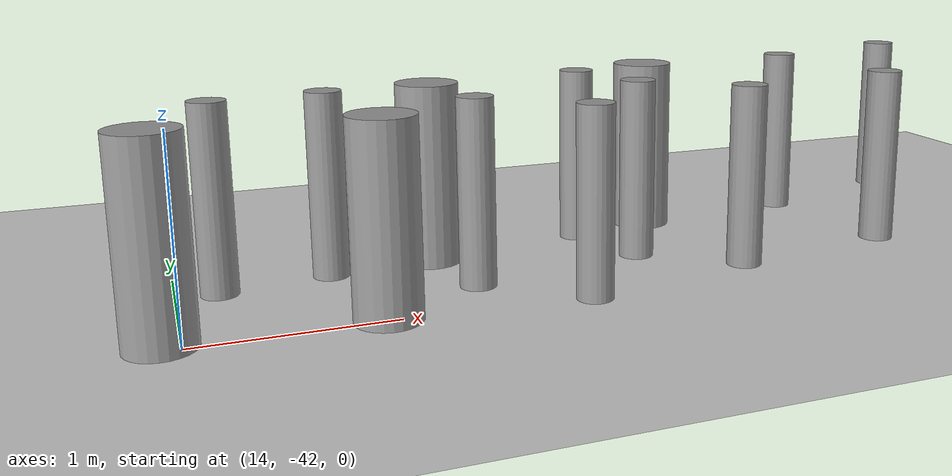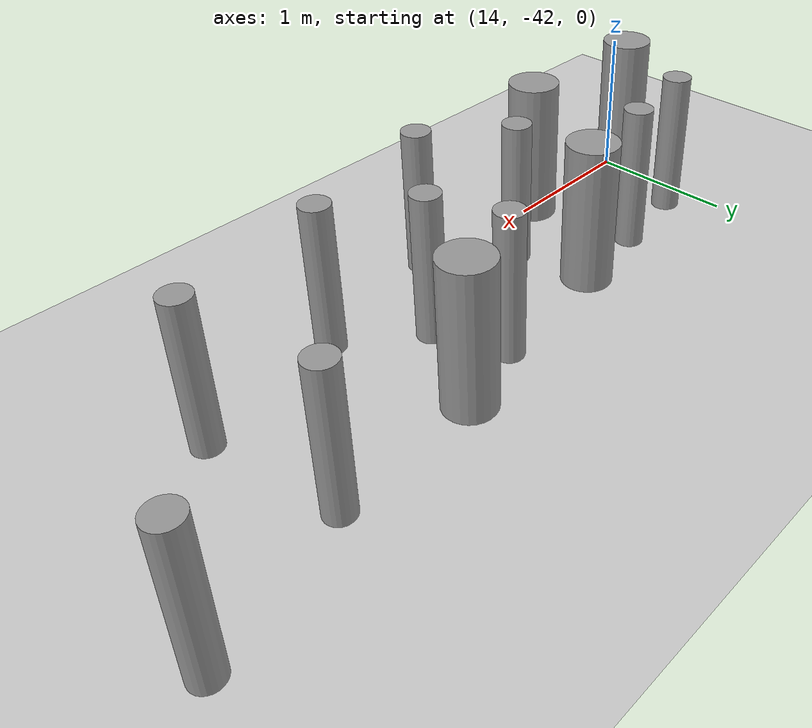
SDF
<sdf version="1.6">
 <world name="default">
  <model name="ground_plane">
   <static>1</static>
   <link name="link">
    <collision name="collision">
     <geometry><plane><normal>0 0 1</normal><size>100 100</size></plane></geometry>
     <surface><friction><ode><mu>100</mu><mu2>50</mu2></ode></friction></surface>
    </collision>
    <visual name="visual">
     <cast_shadows>0</cast_shadows>
     <geometry><plane><normal>0 0 1</normal><size>100 100</size></plane></geometry>
     <material>
      <script><uri>file://media/materials/scripts/gazebo.material</uri><name>Gazebo/Grey</name></script>
     </material>
    </visual>
   </link>
  </model>
  <model name="cyl_wall_clone_clone_1_clone_1_clone_clone_1_clone">
   <link name="link_0">
    <pose>-2.73893 -0.366465 0 0 -0 0</pose>
    <inertial>
     <mass>0.0374993</mass>
     <inertia>
      <ixx>0.00321281</ixx>
      <ixy>0</ixy>
      <ixz>0</ixz>
      <iyy>0.00321281</iyy>
      <iyz>0</iyz>
      <izz>0.000175774</izz>
     </inertia>
    </inertial>
    <visual name="visual">
     <geometry><cylinder><radius>0.0968661</radius><length>1</length></cylinder></geometry>
     <material>
      <lighting>1</lighting>
      <script><uri>file://media/materials/scripts/gazebo.material</uri><name>Gazebo/Grey</name></script>
      <ambient>0.3 0.3 0.3 1</ambient>
      <diffuse>0.7 0.7 0.7 1</diffuse>
      <specular>0.01 0.01 0.01 1</specular>
      <emissive>0 0 0 1</emissive>
     </material>
    </visual>
    <collision name="collision">
     <geometry><cylinder><radius>0.096866</radius><length>1</length></cylinder></geometry>
     <surface>
      <friction>
       <ode><mu>1</mu><mu2>1</mu2><fdir1>0 0 0</fdir1><slip1>0</slip1><slip2>0</slip2></ode>
       <torsional>
        <coefficient>1</coefficient>
        <patch_radius>0</patch_radius>
        <surface_radius>0</surface_radius>
        <use_patch_radius>1</use_patch_radius>
        <ode><slip>0</slip></ode>
       </torsional>
      </friction>
      <bounce><restitution_coefficient>0</restitution_coefficient><threshold>1e+06</threshold></bounce>
      <contact>
       <collide_without_contact>0</collide_without_contact>
       <collide_without_contact_bitmask>1</collide_without_contact_bitmask>
       <collide_bitmask>1</collide_bitmask>
       <ode>
        <soft_cfm>0</soft_cfm>
        <soft_erp>0.2</soft_erp>
        <kp>1e+13</kp>
        <kd>1</kd>
        <max_vel>0.01</max_vel>
        <min_depth>0</min_depth>
       </ode>
       <bullet>
        <split_impulse>1</split_impulse>
        <split_impulse_penetration_threshold>-0.01</split_impulse_penetration_threshold>
        <soft_cfm>0</soft_cfm>
        <soft_erp>0.2</soft_erp>
        <kp>1e+13</kp>
        <kd>1</kd>
       </bullet>
      </contact>
     </surface>
    </collision>
   </link>
   <link name="link_0_clone">
    <pose>-1.73893 0.61877 0 0 -0 0</pose>
    <inertial>
     <mass>0.0374993</mass>
     <inertia>
      <ixx>0.00321281</ixx>
      <ixy>0</ixy>
      <ixz>0</ixz>
      <iyy>0.00321281</iyy>
      <iyz>0</iyz>
      <izz>0.000175774</izz>
     </inertia>
    </inertial>
    <visual name="visual">
     <geometry><cylinder><radius>0.0968661</radius><length>1</length></cylinder></geometry>
     <material>
      <lighting>1</lighting>
      <script><uri>file://media/materials/scripts/gazebo.material</uri><name>Gazebo/Grey</name></script>
      <ambient>0.3 0.3 0.3 1</ambient>
      <diffuse>0.7 0.7 0.7 1</diffuse>
      <specular>0.01 0.01 0.01 1</specular>
      <emissive>0 0 0 1</emissive>
      <shader type="pixel"/>
     </material>
    </visual>
    <collision name="collision">
     <geometry><cylinder><radius>0.096866</radius><length>1</length></cylinder></geometry>
     <surface>
      <friction>
       <ode><mu>1</mu><mu2>1</mu2><fdir1>0 0 0</fdir1><slip1>0</slip1><slip2>0</slip2></ode>
       <torsional>
        <coefficient>1</coefficient>
        <patch_radius>0</patch_radius>
        <surface_radius>0</surface_radius>
        <use_patch_radius>1</use_patch_radius>
        <ode><slip>0</slip></ode>
       </torsional>
      </friction>
      <bounce><restitution_coefficient>0</restitution_coefficient><threshold>1e+06</threshold></bounce>
      <contact>
       <collide_without_contact>0</collide_without_contact>
       <collide_without_contact_bitmask>1</collide_without_contact_bitmask>
       <collide_bitmask>1</collide_bitmask>
       <ode>
        <soft_cfm>0</soft_cfm>
        <soft_erp>0.2</soft_erp>
        <kp>1e+13</kp>
        <kd>1</kd>
        <max_vel>0.01</max_vel>
        <min_depth>0</min_depth>
       </ode>
       <bullet>
        <split_impulse>1</split_impulse>
        <split_impulse_penetration_threshold>-0.01</split_impulse_penetration_threshold>
        <soft_cfm>0</soft_cfm>
        <soft_erp>0.2</soft_erp>
        <kp>1e+13</kp>
        <kd>1</kd>
       </bullet>
      </contact>
     </surface>
    </collision>
   </link>
   <link name="link_0_clone_clone">
    <pose>-0.327073 0.143919 0 0 -0 0</pose>
    <inertial>
     <mass>0.0374993</mass>
     <inertia>
      <ixx>0.00321281</ixx>
      <ixy>0</ixy>
      <ixz>0</ixz>
      <iyy>0.00321281</iyy>
      <iyz>0</iyz>
      <izz>0.000175774</izz>
     </inertia>
    </inertial>
    <visual name="visual">
     <geometry><cylinder><radius>0.0968661</radius><length>1</length></cylinder></geometry>
     <material>
      <lighting>1</lighting>
      <script><uri>file://media/materials/scripts/gazebo.material</uri><name>Gazebo/Grey</name></script>
      <ambient>0.3 0.3 0.3 1</ambient>
      <diffuse>0.7 0.7 0.7 1</diffuse>
      <specular>0.01 0.01 0.01 1</specular>
      <emissive>0 0 0 1</emissive>
      <shader type="pixel"/>
     </material>
    </visual>
    <collision name="collision">
     <geometry><cylinder><radius>0.096866</radius><length>1</length></cylinder></geometry>
     <surface>
      <friction>
       <ode><mu>1</mu><mu2>1</mu2><fdir1>0 0 0</fdir1><slip1>0</slip1><slip2>0</slip2></ode>
       <torsional>
        <coefficient>1</coefficient>
        <patch_radius>0</patch_radius>
        <surface_radius>0</surface_radius>
        <use_patch_radius>1</use_patch_radius>
        <ode><slip>0</slip></ode>
       </torsional>
      </friction>
      <bounce><restitution_coefficient>0</restitution_coefficient><threshold>1e+06</threshold></bounce>
      <contact>
       <collide_without_contact>0</collide_without_contact>
       <collide_without_contact_bitmask>1</collide_without_contact_bitmask>
       <collide_bitmask>1</collide_bitmask>
       <ode>
        <soft_cfm>0</soft_cfm>
        <soft_erp>0.2</soft_erp>
        <kp>1e+13</kp>
        <kd>1</kd>
        <max_vel>0.01</max_vel>
        <min_depth>0</min_depth>
       </ode>
       <bullet>
        <split_impulse>1</split_impulse>
        <split_impulse_penetration_threshold>-0.01</split_impulse_penetration_threshold>
        <soft_cfm>0</soft_cfm>
        <soft_erp>0.2</soft_erp>
        <kp>1e+13</kp>
        <kd>1</kd>
       </bullet>
      </contact>
     </surface>
    </collision>
   </link>
   <link name="link_0_clone_clone_0">
    <pose>1.26107 -0.419359 0 0 -0 0</pose>
    <inertial>
     <mass>0.0374993</mass>
     <inertia>
      <ixx>0.00321281</ixx>
      <ixy>0</ixy>
      <ixz>0</ixz>
      <iyy>0.00321281</iyy>
      <iyz>0</iyz>
      <izz>0.000175774</izz>
     </inertia>
    </inertial>
    <visual name="visual">
     <geometry><cylinder><radius>0.0968661</radius><length>1</length></cylinder></geometry>
     <material>
      <lighting>1</lighting>
      <script><uri>file://media/materials/scripts/gazebo.material</uri><name>Gazebo/Grey</name></script>
      <ambient>0.3 0.3 0.3 1</ambient>
      <diffuse>0.7 0.7 0.7 1</diffuse>
      <specular>0.01 0.01 0.01 1</specular>
      <emissive>0 0 0 1</emissive>
      <shader type="pixel"/>
     </material>
    </visual>
    <collision name="collision">
     <geometry><cylinder><radius>0.096866</radius><length>1</length></cylinder></geometry>
     <surface>
      <friction>
       <ode><mu>1</mu><mu2>1</mu2><fdir1>0 0 0</fdir1><slip1>0</slip1><slip2>0</slip2></ode>
       <torsional>
        <coefficient>1</coefficient>
        <patch_radius>0</patch_radius>
        <surface_radius>0</surface_radius>
        <use_patch_radius>1</use_patch_radius>
        <ode><slip>0</slip></ode>
       </torsional>
      </friction>
      <bounce><restitution_coefficient>0</restitution_coefficient><threshold>1e+06</threshold></bounce>
      <contact>
       <collide_without_contact>0</collide_without_contact>
       <collide_without_contact_bitmask>1</collide_without_contact_bitmask>
       <collide_bitmask>1</collide_bitmask>
       <ode>
        <soft_cfm>0</soft_cfm>
        <soft_erp>0.2</soft_erp>
        <kp>1e+13</kp>
        <kd>1</kd>
        <max_vel>0.01</max_vel>
        <min_depth>0</min_depth>
       </ode>
       <bullet>
        <split_impulse>1</split_impulse>
        <split_impulse_penetration_threshold>-0.01</split_impulse_penetration_threshold>
        <soft_cfm>0</soft_cfm>
        <soft_erp>0.2</soft_erp>
        <kp>1e+13</kp>
        <kd>1</kd>
       </bullet>
      </contact>
     </surface>
    </collision>
   </link>
   <link name="link_0_clone_clone_1">
    <pose>-1.73893 -0.277168 0 0 -0 0</pose>
    <inertial>
     <mass>0.0374993</mass>
     <inertia>
      <ixx>0.00321281</ixx>
      <ixy>0</ixy>
      <ixz>0</ixz>
      <iyy>0.00321281</iyy>
      <iyz>0</iyz>
      <izz>0.000175774</izz>
     </inertia>
    </inertial>
    <visual name="visual">
     <geometry><cylinder><radius>0.0968661</radius><length>1</length></cylinder></geometry>
     <material>
      <lighting>1</lighting>
      <script><uri>file://media/materials/scripts/gazebo.material</uri><name>Gazebo/Grey</name></script>
      <ambient>0.3 0.3 0.3 1</ambient>
      <diffuse>0.7 0.7 0.7 1</diffuse>
      <specular>0.01 0.01 0.01 1</specular>
      <emissive>0 0 0 1</emissive>
      <shader type="pixel"/>
     </material>
    </visual>
    <collision name="collision">
     <geometry><cylinder><radius>0.096866</radius><length>1</length></cylinder></geometry>
     <surface>
      <friction>
       <ode><mu>1</mu><mu2>1</mu2><fdir1>0 0 0</fdir1><slip1>0</slip1><slip2>0</slip2></ode>
       <torsional>
        <coefficient>1</coefficient>
        <patch_radius>0</patch_radius>
        <surface_radius>0</surface_radius>
        <use_patch_radius>1</use_patch_radius>
        <ode><slip>0</slip></ode>
       </torsional>
      </friction>
      <bounce><restitution_coefficient>0</restitution_coefficient><threshold>1e+06</threshold></bounce>
      <contact>
       <collide_without_contact>0</collide_without_contact>
       <collide_without_contact_bitmask>1</collide_without_contact_bitmask>
       <collide_bitmask>1</collide_bitmask>
       <ode>
        <soft_cfm>0</soft_cfm>
        <soft_erp>0.2</soft_erp>
        <kp>1e+13</kp>
        <kd>1</kd>
        <max_vel>0.01</max_vel>
        <min_depth>0</min_depth>
       </ode>
       <bullet>
        <split_impulse>1</split_impulse>
        <split_impulse_penetration_threshold>-0.01</split_impulse_penetration_threshold>
        <soft_cfm>0</soft_cfm>
        <soft_erp>0.2</soft_erp>
        <kp>1e+13</kp>
        <kd>1</kd>
       </bullet>
      </contact>
     </surface>
    </collision>
   </link>
   <link name="link_0_clone_clone_2">
    <pose>-0.738934 0.593961 0 0 -0 0</pose>
    <inertial>
     <mass>0.0374993</mass>
     <inertia>
      <ixx>0.00321281</ixx>
      <ixy>0</ixy>
      <ixz>0</ixz>
      <iyy>0.00321281</iyy>
      <iyz>0</iyz>
      <izz>0.000175774</izz>
     </inertia>
    </inertial>
    <visual name="visual">
     <geometry><cylinder><radius>0.0968661</radius><length>1</length></cylinder></geometry>
     <material>
      <lighting>1</lighting>
      <script><uri>file://media/materials/scripts/gazebo.material</uri><name>Gazebo/Grey</name></script>
      <ambient>0.3 0.3 0.3 1</ambient>
      <diffuse>0.7 0.7 0.7 1</diffuse>
      <specular>0.01 0.01 0.01 1</specular>
      <emissive>0 0 0 1</emissive>
      <shader type="pixel"/>
     </material>
    </visual>
    <collision name="collision">
     <geometry><cylinder><radius>0.096866</radius><length>1</length></cylinder></geometry>
     <surface>
      <friction>
       <ode><mu>1</mu><mu2>1</mu2><fdir1>0 0 0</fdir1><slip1>0</slip1><slip2>0</slip2></ode>
       <torsional>
        <coefficient>1</coefficient>
        <patch_radius>0</patch_radius>
        <surface_radius>0</surface_radius>
        <use_patch_radius>1</use_patch_radius>
        <ode><slip>0</slip></ode>
       </torsional>
      </friction>
      <bounce><restitution_coefficient>0</restitution_coefficient><threshold>1e+06</threshold></bounce>
      <contact>
       <collide_without_contact>0</collide_without_contact>
       <collide_without_contact_bitmask>1</collide_without_contact_bitmask>
       <collide_bitmask>1</collide_bitmask>
       <ode>
        <soft_cfm>0</soft_cfm>
        <soft_erp>0.2</soft_erp>
        <kp>1e+13</kp>
        <kd>1</kd>
        <max_vel>0.01</max_vel>
        <min_depth>0</min_depth>
       </ode>
       <bullet>
        <split_impulse>1</split_impulse>
        <split_impulse_penetration_threshold>-0.01</split_impulse_penetration_threshold>
        <soft_cfm>0</soft_cfm>
        <soft_erp>0.2</soft_erp>
        <kp>1e+13</kp>
        <kd>1</kd>
       </bullet>
      </contact>
     </surface>
    </collision>
   </link>
   <link name="link_0_clone_clone_3">
    <pose>0.261066 0.624849 0 0 -0 0</pose>
    <inertial>
     <mass>0.0374993</mass>
     <inertia>
      <ixx>0.00321281</ixx>
      <ixy>0</ixy>
      <ixz>0</ixz>
      <iyy>0.00321281</iyy>
      <iyz>0</iyz>
      <izz>0.000175774</izz>
     </inertia>
    </inertial>
    <visual name="visual">
     <geometry><cylinder><radius>0.0968661</radius><length>1</length></cylinder></geometry>
     <material>
      <lighting>1</lighting>
      <script><uri>file://media/materials/scripts/gazebo.material</uri><name>Gazebo/Grey</name></script>
      <ambient>0.3 0.3 0.3 1</ambient>
      <diffuse>0.7 0.7 0.7 1</diffuse>
      <specular>0.01 0.01 0.01 1</specular>
      <emissive>0 0 0 1</emissive>
      <shader type="pixel"/>
     </material>
    </visual>
    <collision name="collision">
     <geometry><cylinder><radius>0.096866</radius><length>1</length></cylinder></geometry>
     <surface>
      <friction>
       <ode><mu>1</mu><mu2>1</mu2><fdir1>0 0 0</fdir1><slip1>0</slip1><slip2>0</slip2></ode>
       <torsional>
        <coefficient>1</coefficient>
        <patch_radius>0</patch_radius>
        <surface_radius>0</surface_radius>
        <use_patch_radius>1</use_patch_radius>
        <ode><slip>0</slip></ode>
       </torsional>
      </friction>
      <bounce><restitution_coefficient>0</restitution_coefficient><threshold>1e+06</threshold></bounce>
      <contact>
       <collide_without_contact>0</collide_without_contact>
       <collide_without_contact_bitmask>1</collide_without_contact_bitmask>
       <collide_bitmask>1</collide_bitmask>
       <ode>
        <soft_cfm>0</soft_cfm>
        <soft_erp>0.2</soft_erp>
        <kp>1e+13</kp>
        <kd>1</kd>
        <max_vel>0.01</max_vel>
        <min_depth>0</min_depth>
       </ode>
       <bullet>
        <split_impulse>1</split_impulse>
        <split_impulse_penetration_threshold>-0.01</split_impulse_penetration_threshold>
        <soft_cfm>0</soft_cfm>
        <soft_erp>0.2</soft_erp>
        <kp>1e+13</kp>
        <kd>1</kd>
       </bullet>
      </contact>
     </surface>
    </collision>
   </link>
   <link name="link_0_clone_clone_4">
    <pose>-0.239049 -0.353105 0 0 -0 0</pose>
    <inertial>
     <mass>0.0374993</mass>
     <inertia>
      <ixx>0.00321281</ixx>
      <ixy>0</ixy>
      <ixz>0</ixz>
      <iyy>0.00321281</iyy>
      <iyz>0</iyz>
      <izz>0.000175774</izz>
     </inertia>
    </inertial>
    <visual name="visual">
     <geometry><cylinder><radius>0.0968661</radius><length>1</length></cylinder></geometry>
     <material>
      <lighting>1</lighting>
      <script><uri>file://media/materials/scripts/gazebo.material</uri><name>Gazebo/Grey</name></script>
      <ambient>0.3 0.3 0.3 1</ambient>
      <diffuse>0.7 0.7 0.7 1</diffuse>
      <specular>0.01 0.01 0.01 1</specular>
      <emissive>0 0 0 1</emissive>
      <shader type="pixel"/>
     </material>
    </visual>
    <collision name="collision">
     <geometry><cylinder><radius>0.096866</radius><length>1</length></cylinder></geometry>
     <surface>
      <friction>
       <ode><mu>1</mu><mu2>1</mu2><fdir1>0 0 0</fdir1><slip1>0</slip1><slip2>0</slip2></ode>
       <torsional>
        <coefficient>1</coefficient>
        <patch_radius>0</patch_radius>
        <surface_radius>0</surface_radius>
        <use_patch_radius>1</use_patch_radius>
        <ode><slip>0</slip></ode>
       </torsional>
      </friction>
      <bounce><restitution_coefficient>0</restitution_coefficient><threshold>1e+06</threshold></bounce>
      <contact>
       <collide_without_contact>0</collide_without_contact>
       <collide_without_contact_bitmask>1</collide_without_contact_bitmask>
       <collide_bitmask>1</collide_bitmask>
       <ode>
        <soft_cfm>0</soft_cfm>
        <soft_erp>0.2</soft_erp>
        <kp>1e+13</kp>
        <kd>1</kd>
        <max_vel>0.01</max_vel>
        <min_depth>0</min_depth>
       </ode>
       <bullet>
        <split_impulse>1</split_impulse>
        <split_impulse_penetration_threshold>-0.01</split_impulse_penetration_threshold>
        <soft_cfm>0</soft_cfm>
        <soft_erp>0.2</soft_erp>
        <kp>1e+13</kp>
        <kd>1</kd>
       </bullet>
      </contact>
     </surface>
    </collision>
   </link>
   <link name="link_0_clone_clone_5">
    <pose>0.672792 0.143919 0 0 -0 0</pose>
    <inertial>
     <mass>0.0374993</mass>
     <inertia>
      <ixx>0.00321281</ixx>
      <ixy>0</ixy>
      <ixz>0</ixz>
      <iyy>0.00321281</iyy>
      <iyz>0</iyz>
      <izz>0.000175774</izz>
     </inertia>
    </inertial>
    <visual name="visual">
     <geometry><cylinder><radius>0.0968661</radius><length>1</length></cylinder></geometry>
     <material>
      <lighting>1</lighting>
      <script><uri>file://media/materials/scripts/gazebo.material</uri><name>Gazebo/Grey</name></script>
      <ambient>0.3 0.3 0.3 1</ambient>
      <diffuse>0.7 0.7 0.7 1</diffuse>
      <specular>0.01 0.01 0.01 1</specular>
      <emissive>0 0 0 1</emissive>
      <shader type="pixel"/>
     </material>
    </visual>
    <collision name="collision">
     <geometry><cylinder><radius>0.096866</radius><length>1</length></cylinder></geometry>
     <surface>
      <friction>
       <ode><mu>1</mu><mu2>1</mu2><fdir1>0 0 0</fdir1><slip1>0</slip1><slip2>0</slip2></ode>
       <torsional>
        <coefficient>1</coefficient>
        <patch_radius>0</patch_radius>
        <surface_radius>0</surface_radius>
        <use_patch_radius>1</use_patch_radius>
        <ode><slip>0</slip></ode>
       </torsional>
      </friction>
      <bounce><restitution_coefficient>0</restitution_coefficient><threshold>1e+06</threshold></bounce>
      <contact>
       <collide_without_contact>0</collide_without_contact>
       <collide_without_contact_bitmask>1</collide_without_contact_bitmask>
       <collide_bitmask>1</collide_bitmask>
       <ode>
        <soft_cfm>0</soft_cfm>
        <soft_erp>0.2</soft_erp>
        <kp>1e+13</kp>
        <kd>1</kd>
        <max_vel>0.01</max_vel>
        <min_depth>0</min_depth>
       </ode>
       <bullet>
        <split_impulse>1</split_impulse>
        <split_impulse_penetration_threshold>-0.01</split_impulse_penetration_threshold>
        <soft_cfm>0</soft_cfm>
        <soft_erp>0.2</soft_erp>
        <kp>1e+13</kp>
        <kd>1</kd>
       </bullet>
      </contact>
     </surface>
    </collision>
   </link>
   <link name="link_0_clone_clone_6">
    <pose>1.84596 -0.433423 0 0 -0 0</pose>
    <inertial>
     <mass>0.0374993</mass>
     <inertia>
      <ixx>0.00321281</ixx>
      <ixy>0</ixy>
      <ixz>0</ixz>
      <iyy>0.00321281</iyy>
      <iyz>0</iyz>
      <izz>0.000175774</izz>
     </inertia>
    </inertial>
    <visual name="visual">
     <geometry><cylinder><radius>0.0968661</radius><length>1</length></cylinder></geometry>
     <material>
      <lighting>1</lighting>
      <script><uri>file://media/materials/scripts/gazebo.material</uri><name>Gazebo/Grey</name></script>
      <ambient>0.3 0.3 0.3 1</ambient>
      <diffuse>0.7 0.7 0.7 1</diffuse>
      <specular>0.01 0.01 0.01 1</specular>
      <emissive>0 0 0 1</emissive>
      <shader type="pixel"/>
     </material>
    </visual>
    <collision name="collision">
     <geometry><cylinder><radius>0.096866</radius><length>1</length></cylinder></geometry>
     <surface>
      <friction>
       <ode><mu>1</mu><mu2>1</mu2><fdir1>0 0 0</fdir1><slip1>0</slip1><slip2>0</slip2></ode>
       <torsional>
        <coefficient>1</coefficient>
        <patch_radius>0</patch_radius>
        <surface_radius>0</surface_radius>
        <use_patch_radius>1</use_patch_radius>
        <ode><slip>0</slip></ode>
       </torsional>
      </friction>
      <bounce><restitution_coefficient>0</restitution_coefficient><threshold>1e+06</threshold></bounce>
      <contact>
       <collide_without_contact>0</collide_without_contact>
       <collide_without_contact_bitmask>1</collide_without_contact_bitmask>
       <collide_bitmask>1</collide_bitmask>
       <ode>
        <soft_cfm>0</soft_cfm>
        <soft_erp>0.2</soft_erp>
        <kp>1e+13</kp>
        <kd>1</kd>
        <max_vel>0.01</max_vel>
        <min_depth>0</min_depth>
       </ode>
       <bullet>
        <split_impulse>1</split_impulse>
        <split_impulse_penetration_threshold>-0.01</split_impulse_penetration_threshold>
        <soft_cfm>0</soft_cfm>
        <soft_erp>0.2</soft_erp>
        <kp>1e+13</kp>
        <kd>1</kd>
       </bullet>
      </contact>
     </surface>
    </collision>
   </link>
   <link name="link_1">
    <pose>-0.738934 -0.397931 0 0 -0 0</pose>
    <inertial>
     <mass>0.117398</mass>
     <inertia>
      <ixx>0.0106445</ixx>
      <ixy>0</ixy>
      <ixz>0</ixz>
      <iyy>0.0106445</iyy>
      <iyz>0</iyz>
      <izz>0.00172278</izz>
     </inertia>
    </inertial>
    <visual name="visual">
     <geometry><cylinder><radius>0.171317</radius><length>1</length></cylinder></geometry>
     <material>
      <lighting>1</lighting>
      <script><uri>file://media/materials/scripts/gazebo.material</uri><name>Gazebo/Grey</name></script>
      <ambient>0.3 0.3 0.3 1</ambient>
      <diffuse>0.7 0.7 0.7 1</diffuse>
      <specular>0.01 0.01 0.01 1</specular>
      <emissive>0 0 0 1</emissive>
     </material>
    </visual>
    <collision name="collision">
     <geometry><cylinder><radius>0.171317</radius><length>1</length></cylinder></geometry>
     <surface>
      <friction>
       <ode><mu>1</mu><mu2>1</mu2><fdir1>0 0 0</fdir1><slip1>0</slip1><slip2>0</slip2></ode>
       <torsional>
        <coefficient>1</coefficient>
        <patch_radius>0</patch_radius>
        <surface_radius>0</surface_radius>
        <use_patch_radius>1</use_patch_radius>
        <ode><slip>0</slip></ode>
       </torsional>
      </friction>
      <bounce><restitution_coefficient>0</restitution_coefficient><threshold>1e+06</threshold></bounce>
      <contact>
       <collide_without_contact>0</collide_without_contact>
       <collide_without_contact_bitmask>1</collide_without_contact_bitmask>
       <collide_bitmask>1</collide_bitmask>
       <ode>
        <soft_cfm>0</soft_cfm>
        <soft_erp>0.2</soft_erp>
        <kp>1e+13</kp>
        <kd>1</kd>
        <max_vel>0.01</max_vel>
        <min_depth>0</min_depth>
       </ode>
       <bullet>
        <split_impulse>1</split_impulse>
        <split_impulse_penetration_threshold>-0.01</split_impulse_penetration_threshold>
        <soft_cfm>0</soft_cfm>
        <soft_erp>0.2</soft_erp>
        <kp>1e+13</kp>
        <kd>1</kd>
       </bullet>
      </contact>
     </surface>
    </collision>
   </link>
   <link name="link_1_clone">
    <pose>0.697784 -0.380861 0 0 -0 0</pose>
    <inertial>
     <mass>0.117398</mass>
     <inertia>
      <ixx>0.0106445</ixx>
      <ixy>0</ixy>
      <ixz>0</ixz>
      <iyy>0.0106445</iyy>
      <iyz>0</iyz>
      <izz>0.00172278</izz>
     </inertia>
    </inertial>
    <visual name="visual">
     <geometry><cylinder><radius>0.171317</radius><length>1</length></cylinder></geometry>
     <material>
      <lighting>1</lighting>
      <script><uri>file://media/materials/scripts/gazebo.material</uri><name>Gazebo/Grey</name></script>
      <ambient>0.3 0.3 0.3 1</ambient>
      <diffuse>0.7 0.7 0.7 1</diffuse>
      <specular>0.01 0.01 0.01 1</specular>
      <emissive>0 0 0 1</emissive>
      <shader type="pixel"/>
     </material>
    </visual>
    <collision name="collision">
     <geometry><cylinder><radius>0.171317</radius><length>1</length></cylinder></geometry>
     <surface>
      <friction>
       <ode><mu>1</mu><mu2>1</mu2><fdir1>0 0 0</fdir1><slip1>0</slip1><slip2>0</slip2></ode>
       <torsional>
        <coefficient>1</coefficient>
        <patch_radius>0</patch_radius>
        <surface_radius>0</surface_radius>
        <use_patch_radius>1</use_patch_radius>
        <ode><slip>0</slip></ode>
       </torsional>
      </friction>
      <bounce><restitution_coefficient>0</restitution_coefficient><threshold>1e+06</threshold></bounce>
      <contact>
       <collide_without_contact>0</collide_without_contact>
       <collide_without_contact_bitmask>1</collide_without_contact_bitmask>
       <collide_bitmask>1</collide_bitmask>
       <ode>
        <soft_cfm>0</soft_cfm>
        <soft_erp>0.2</soft_erp>
        <kp>1e+13</kp>
        <kd>1</kd>
        <max_vel>0.01</max_vel>
        <min_depth>0</min_depth>
       </ode>
       <bullet>
        <split_impulse>1</split_impulse>
        <split_impulse_penetration_threshold>-0.01</split_impulse_penetration_threshold>
        <soft_cfm>0</soft_cfm>
        <soft_erp>0.2</soft_erp>
        <kp>1e+13</kp>
        <kd>1</kd>
       </bullet>
      </contact>
     </surface>
    </collision>
   </link>
   <link name="link_1_clone_0">
    <pose>1.26107 0.358974 0 0 -0 0</pose>
    <inertial>
     <mass>0.117398</mass>
     <inertia>
      <ixx>0.0106445</ixx>
      <ixy>0</ixy>
      <ixz>0</ixz>
      <iyy>0.0106445</iyy>
      <iyz>0</iyz>
      <izz>0.00172278</izz>
     </inertia>
    </inertial>
    <visual name="visual">
     <geometry><cylinder><radius>0.171317</radius><length>1</length></cylinder></geometry>
     <material>
      <lighting>1</lighting>
      <script><uri>file://media/materials/scripts/gazebo.material</uri><name>Gazebo/Grey</name></script>
      <ambient>0.3 0.3 0.3 1</ambient>
      <diffuse>0.7 0.7 0.7 1</diffuse>
      <specular>0.01 0.01 0.01 1</specular>
      <emissive>0 0 0 1</emissive>
      <shader type="pixel"/>
     </material>
    </visual>
    <collision name="collision">
     <geometry><cylinder><radius>0.171317</radius><length>1</length></cylinder></geometry>
     <surface>
      <friction>
       <ode><mu>1</mu><mu2>1</mu2><fdir1>0 0 0</fdir1><slip1>0</slip1><slip2>0</slip2></ode>
       <torsional>
        <coefficient>1</coefficient>
        <patch_radius>0</patch_radius>
        <surface_radius>0</surface_radius>
        <use_patch_radius>1</use_patch_radius>
        <ode><slip>0</slip></ode>
       </torsional>
      </friction>
      <bounce><restitution_coefficient>0</restitution_coefficient><threshold>1e+06</threshold></bounce>
      <contact>
       <collide_without_contact>0</collide_without_contact>
       <collide_without_contact_bitmask>1</collide_without_contact_bitmask>
       <collide_bitmask>1</collide_bitmask>
       <ode>
        <soft_cfm>0</soft_cfm>
        <soft_erp>0.2</soft_erp>
        <kp>1e+13</kp>
        <kd>1</kd>
        <max_vel>0.01</max_vel>
        <min_depth>0</min_depth>
       </ode>
       <bullet>
        <split_impulse>1</split_impulse>
        <split_impulse_penetration_threshold>-0.01</split_impulse_penetration_threshold>
        <soft_cfm>0</soft_cfm>
        <soft_erp>0.2</soft_erp>
        <kp>1e+13</kp>
        <kd>1</kd>
       </bullet>
      </contact>
     </surface>
    </collision>
   </link>
   <link name="link_1_clone_1">
    <pose>2.26107 0.143919 0 0 -0 0</pose>
    <inertial>
     <mass>0.117398</mass>
     <inertia>
      <ixx>0.0106445</ixx>
      <ixy>0</ixy>
      <ixz>0</ixz>
      <iyy>0.0106445</iyy>
      <iyz>0</iyz>
      <izz>0.00172278</izz>
     </inertia>
    </inertial>
    <visual name="visual">
     <geometry><cylinder><radius>0.171317</radius><length>1</length></cylinder></geometry>
     <material>
      <lighting>1</lighting>
      <script><uri>file://media/materials/scripts/gazebo.material</uri><name>Gazebo/Grey</name></script>
      <ambient>0.3 0.3 0.3 1</ambient>
      <diffuse>0.7 0.7 0.7 1</diffuse>
      <specular>0.01 0.01 0.01 1</specular>
      <emissive>0 0 0 1</emissive>
      <shader type="pixel"/>
     </material>
    </visual>
    <collision name="collision">
     <geometry><cylinder><radius>0.171317</radius><length>1</length></cylinder></geometry>
     <surface>
      <friction>
       <ode><mu>1</mu><mu2>1</mu2><fdir1>0 0 0</fdir1><slip1>0</slip1><slip2>0</slip2></ode>
       <torsional>
        <coefficient>1</coefficient>
        <patch_radius>0</patch_radius>
        <surface_radius>0</surface_radius>
        <use_patch_radius>1</use_patch_radius>
        <ode><slip>0</slip></ode>
       </torsional>
      </friction>
      <bounce><restitution_coefficient>0</restitution_coefficient><threshold>1e+06</threshold></bounce>
      <contact>
       <collide_without_contact>0</collide_without_contact>
       <collide_without_contact_bitmask>1</collide_without_contact_bitmask>
       <collide_bitmask>1</collide_bitmask>
       <ode>
        <soft_cfm>0</soft_cfm>
        <soft_erp>0.2</soft_erp>
        <kp>1e+13</kp>
        <kd>1</kd>
        <max_vel>0.01</max_vel>
        <min_depth>0</min_depth>
       </ode>
       <bullet>
        <split_impulse>1</split_impulse>
        <split_impulse_penetration_threshold>-0.01</split_impulse_penetration_threshold>
        <soft_cfm>0</soft_cfm>
        <soft_erp>0.2</soft_erp>
        <kp>1e+13</kp>
        <kd>1</kd>
       </bullet>
      </contact>
     </surface>
    </collision>
   </link>
   <static>1</static>
   <pose>16.1095 -41.4032 0.5 0 0 -2.95907</pose>
  </model>
 </world>
</sdf>
